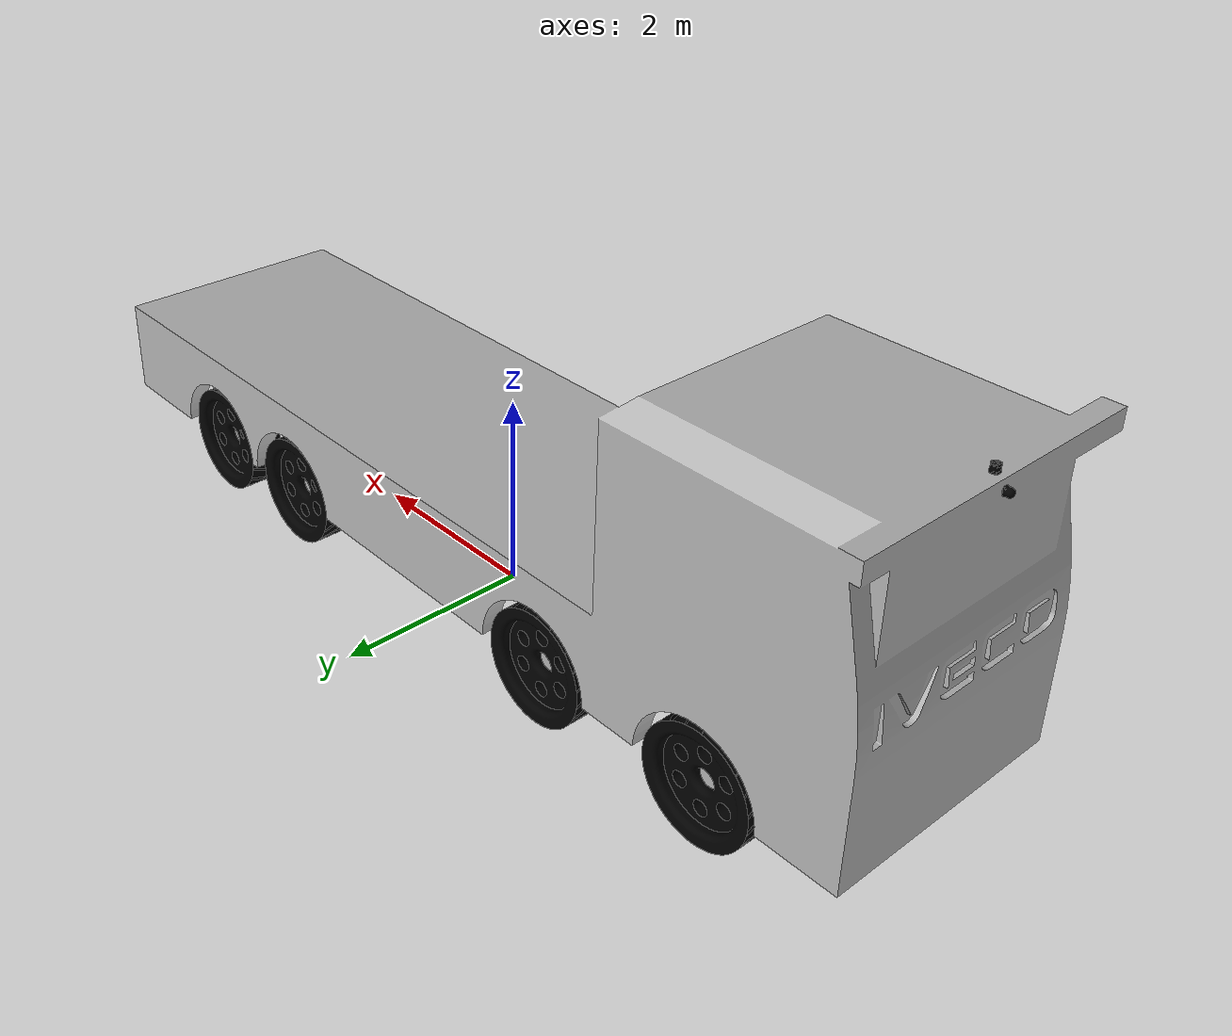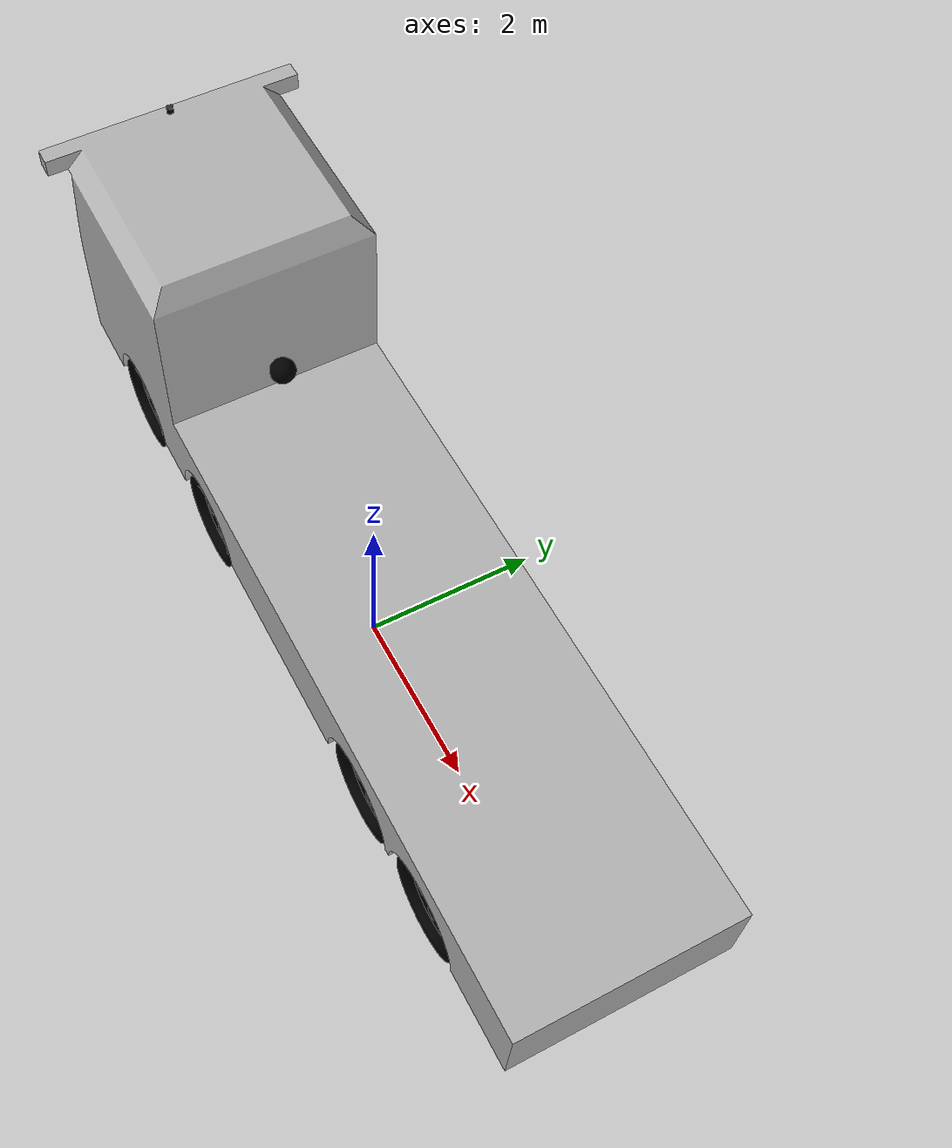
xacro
<?xml version="1.0" ?>
<robot name="truck" xmlns:xacro="http://www.ros.org/wiki/xacro">

<xacro:include filename="$(find truck_description)/urdf/materials.xacro" />

<link name="base_link">
  <inertial>
    <origin xyz="0.0 0.0 2.0832863727326365" rpy="0 0 0"/>
    <mass value="11829.5199"/>
    <inertia ixx="14576.4006" ixy="0.0" ixz="0.0" iyy="98410.5574" iyz="0.0" izz="98414.9426"/>
  </inertial>
  <visual>
    <origin xyz="0 0 0" rpy="0 0 0"/>
    <geometry>
      <mesh filename="file://$(find truck_description)/meshes/base_link.stl" scale="0.001 0.001 0.001"/>
    </geometry>
    <material name="silver"/>
  </visual>
  <collision>
    <geometry>
      <box size="10.2 2.6 3.6" />
    </geometry>
    <origin xyz="0 2.7721660388234675e-05 2.040816658051612" rpy="0 0 0" />
  </collision>
</link>

<xacro:macro name="suspension_unit" params="name xyz">
  <link name="${name}_suspension_mount">
    <inertial>
      <origin xyz="0 0 0" rpy="0 0 0"/>
      <mass value="0.01"/>
      <inertia ixx="1e-5" ixy="0" ixz="0" iyy="1e-5" iyz="0" izz="1e-5"/>
    </inertial>
  </link>

  <link name="${name}_suspension_slider">
    <inertial>
      <origin xyz="0 0 0" rpy="0 0 0"/>
      <mass value="0.01"/>
      <inertia ixx="1e-5" ixy="0" ixz="0" iyy="1e-5" iyz="0" izz="1e-5"/>
    </inertial>
  </link>

  <joint name="${name}_suspension_mount_joint" type="fixed">
    <parent link="base_link"/>
    <child link="${name}_suspension_mount"/>
    <origin xyz="${xyz}" rpy="0 0 0"/>
  </joint>

  <joint name="${name}_suspension_joint" type="prismatic">
    <parent link="${name}_suspension_mount"/>
    <child link="${name}_suspension_slider"/>
    <origin xyz="0 0 0" rpy="0 0 0"/>
    <axis xyz="0 0 1"/>
    <limit lower="-0.05" upper="0.05" effort="100000" velocity="1.0"/>
    <dynamics damping="8000.0" friction="0.0"/>
  </joint>

  <gazebo reference="${name}_suspension_joint">
    <implicitSpringDamper>true</implicitSpringDamper>
    <springStiffness>1000000.0</springStiffness>
    <springReference>0.0</springReference>
  </gazebo>
</xacro:macro>

<link name="left_wheel_axis4_1">
  <inertial>
    <origin xyz="3.472872993626197e-07 4.744911922260897e-07 4.782199592989755e-07" rpy="0 0 0"/>
    <mass value="121.3100"/>
    <inertia ixx="13.0741" ixy="0" ixz="0" iyy="24.2102" iyz="0" izz="13.0741"/>
  </inertial>
  <visual>
    <origin xyz="-3.333571 0.983719 -0.602025" rpy="0 0 0"/>
    <geometry>
      <mesh filename="file://$(find truck_description)/meshes/left_wheel_axis4_1.stl" scale="0.001 0.001 0.001"/>
    </geometry>
    <material name="black"/>
  </visual>
  <collision name="left_wheel_axis4_collision_1">
    <geometry>
      <sphere radius="0.5645" />
    </geometry>
    <origin xyz="0 0 0" rpy="0 0 0" />
  </collision>
</link>

<link name="left_wheel_axis3_1">
  <inertial>
    <origin xyz="3.472872989185305e-07 4.744911920040451e-07 4.782199596320424e-07" rpy="0 0 0"/>
    <mass value="121.3100"/>
    <inertia ixx="13.0741" ixy="0" ixz="0" iyy="24.2102" iyz="0" izz="13.0741"/>
  </inertial>
  <visual>
    <origin xyz="-1.951571 0.983719 -0.602025" rpy="0 0 0"/>
    <geometry>
      <mesh filename="file://$(find truck_description)/meshes/left_wheel_axis3_1.stl" scale="0.001 0.001 0.001"/>
    </geometry>
    <material name="black"/>
  </visual>
  <collision name="left_wheel_axis3_collision_1">
    <geometry>
      <sphere radius="0.5645" />
    </geometry>
    <origin xyz="0 0 0" rpy="0 0 0" />
  </collision>
</link>

<link name="right_wheel_axis4_1">
  <inertial>
    <origin xyz="3.472872993626197e-07 4.744911921150674e-07 4.78219957633641e-07" rpy="0 0 0"/>
    <mass value="121.3100"/>
    <inertia ixx="13.0741" ixy="0" ixz="0" iyy="24.2102" iyz="0" izz="13.0741"/>
  </inertial>
  <visual>
    <origin xyz="-3.333571 -1.104281 -0.602025" rpy="0 0 0"/>
    <geometry>
      <mesh filename="file://$(find truck_description)/meshes/right_wheel_axis4_1.stl" scale="0.001 0.001 0.001"/>
    </geometry>
    <material name="black"/>
  </visual>
  <collision name="right_wheel_axis4_collision_1">
    <geometry>
      <sphere radius="0.5645" />
    </geometry>
    <origin xyz="0 0 0" rpy="0 0 0" />
  </collision>
</link>

<link name="right_wheel_axis3_1">
  <inertial>
    <origin xyz="3.472873000287535e-07 4.744911921150674e-07 4.782199595210201e-07" rpy="0 0 0"/>
    <mass value="121.3100"/>
    <inertia ixx="13.0741" ixy="0" ixz="0" iyy="24.2102" iyz="0" izz="13.0741"/>
  </inertial>
  <visual>
    <origin xyz="-1.951571 -1.104281 -0.602025" rpy="0 0 0"/>
    <geometry>
      <mesh filename="file://$(find truck_description)/meshes/right_wheel_axis3_1.stl" scale="0.001 0.001 0.001"/>
    </geometry>
    <material name="black"/>
  </visual>
  <collision name="right_wheel_axis3_collision_1">
    <geometry>
      <sphere radius="0.5645" />
    </geometry>
    <origin xyz="0 0 0" rpy="0 0 0" />
  </collision>
</link>

<link name="left_wheel_axis2_1">
  <inertial>
    <origin xyz="3.472872989185305e-07 4.744911910048444e-07 4.782199599651094e-07" rpy="0 0 0"/>
    <mass value="121.3100"/>
    <inertia ixx="13.0741" ixy="0" ixz="0" iyy="24.2102" iyz="0" izz="13.0741"/>
  </inertial>
  <visual>
    <origin xyz="1.798429 1.005219 -0.602025" rpy="0 0 0"/>
    <geometry>
      <mesh filename="file://$(find truck_description)/meshes/left_wheel_axis2_1.stl" scale="0.001 0.001 0.001"/>
    </geometry>
    <material name="black"/>
  </visual>
  <collision name="left_wheel_axis2_collision_1">
    <geometry>
      <sphere radius="0.5645" />
    </geometry>
    <origin xyz="0 0 0" rpy="0 0 0" />
  </collision>
</link>

<link name="left_steer_axis2_link">
  <inertial>
    <origin xyz="0 0 0" rpy="0 0 0"/>
    <mass value="0.01"/>
    <inertia ixx="1e-5" ixy="0" ixz="0" iyy="1e-5" iyz="0" izz="1e-5"/>
  </inertial>
</link>

<link name="right_wheel_axis2_1">
  <inertial>
    <origin xyz="3.472873000287535e-07 4.744911910048444e-07 4.782199599651094e-07" rpy="0 0 0"/>
    <mass value="121.3100"/>
    <inertia ixx="13.0741" iyy="24.2102" izz="13.0741" ixy="0" iyz="0" ixz="0"/>
  </inertial>
  <visual>
    <origin xyz="1.798429 -1.125781 -0.602025" rpy="0 0 0"/>
    <geometry>
      <mesh filename="file://$(find truck_description)/meshes/right_wheel_axis2_1.stl" scale="0.001 0.001 0.001"/>
    </geometry>
    <material name="black"/>
  </visual>
  <collision name="right_wheel_axis2_collision_1">
    <geometry>
      <sphere radius="0.5645" />
    </geometry>
    <origin xyz="0 0 0" rpy="0 0 0" />
  </collision>
</link>

<link name="right_steer_axis2_link">
  <inertial>
    <origin xyz="0 0 0" rpy="0 0 0"/>
    <mass value="0.01"/>
    <inertia ixx="1e-5" ixy="0" ixz="0" iyy="1e-5" iyz="0" izz="1e-5"/>
  </inertial>
</link>

<link name="left_wheel_axis1_1">
  <inertial>
    <origin xyz="3.472872993626197e-07 4.744911910048444e-07 4.78219960187154e-07" rpy="0 0 0"/>
    <mass value="121.3100"/>
    <inertia ixx="13.0741" ixy="0" ixz="0" iyy="24.2102" iyz="0" izz="13.0741"/>
  </inertial>
  <visual>
    <origin xyz="3.698429 1.005219 -0.602025" rpy="0 0 0"/>
    <geometry>
      <mesh filename="file://$(find truck_description)/meshes/left_wheel_axis1_1.stl" scale="0.001 0.001 0.001"/>
    </geometry>
    <material name="black"/>
  </visual>
  <collision name="left_wheel_axis1_collision_1">
    <geometry>
      <sphere radius="0.5645" />
    </geometry>
    <origin xyz="0 0 0" rpy="0 0 0" />
  </collision>
</link>

<link name="left_steer_axis1_link">
  <inertial>
    <origin xyz="0 0 0" rpy="0 0 0"/>
    <mass value="0.01"/>
    <inertia ixx="1e-5" ixy="0" ixz="0" iyy="1e-5" iyz="0" izz="1e-5"/>
  </inertial>
</link>

<link name="right_wheel_axis1_1">
  <inertial>
    <origin xyz="3.472872993626197e-07 4.744911910048444e-07 4.78219960187154e-07" rpy="0 0 0"/>
    <mass value="121.3100"/>
    <inertia ixx="13.0741" ixy="0" ixz="0" iyy="24.2102" iyz="0" izz="13.0741"/>
  </inertial>
  <visual>
    <origin xyz="3.698429 -1.125781 -0.602025" rpy="0 0 0"/>
    <geometry>
      <mesh filename="file://$(find truck_description)/meshes/right_wheel_axis1_1.stl" scale="0.001 0.001 0.001"/>
    </geometry>
    <material name="black"/>
  </visual>
  <collision name="right_wheel_axis1_collision_1">
    <geometry>
      <sphere radius="0.5645" />
    </geometry>
    <origin xyz="0 0 0" rpy="0 0 0" />
  </collision>
</link>

<link name="right_steer_axis1_link">
  <inertial>
    <origin xyz="0 0 0" rpy="0 0 0"/>
    <mass value="0.01"/>
    <inertia ixx="1e-5" ixy="0" ixz="0" iyy="1e-5" iyz="0" izz="1e-5"/>
  </inertial>
</link>

<link name="ouster_link_1">
  <inertial>
    <origin xyz="1.868054972931077e-07 0.00045335605831459125 0.03028987258186744" rpy="0 0 0"/>
    <mass value="2.207020426893562"/>
    <inertia ixx="0.001578" iyy="0.001594" izz="0.001651" ixy="0.0" iyz="-1.2e-05" ixz="-0.0"/>
  </inertial>
  <visual>
    <origin xyz="5.034679 -0.060281 -3.602025" rpy="0 0 0"/>
    <geometry>
      <mesh filename="file://$(find truck_description)/meshes/ouster_link_1.stl" scale="0.001 0.001 0.001"/>
    </geometry>
    <material name="black"/>
  </visual>
  <collision>
    <origin xyz="5.034679 -0.060281 -3.602025" rpy="0 0 0"/>
    <geometry>
      <mesh filename="file://$(find truck_description)/meshes/ouster_link_1.stl" scale="0.001 0.001 0.001"/>
    </geometry>
  </collision>
</link>

<link name="osdome_link1_1">
  <inertial>
    <origin xyz="-0.031863759259128877 0.00046348026222201716 3.249757445367152e-07" rpy="0 0 0"/>
    <mass value="2.304753434462314"/>
    <inertia ixx="0.001576" iyy="0.001682" izz="0.001666" ixy="1.3e-05" iyz="0.0" ixz="0.0"/>
  </inertial>
  <visual>
    <origin xyz="5.130429 -0.060281 -3.502025" rpy="0 0 0"/>
    <geometry>
      <mesh filename="file://$(find truck_description)/meshes/osdome_link1_1.stl" scale="0.001 0.001 0.001"/>
    </geometry>
    <material name="black"/>
  </visual>
  <collision>
    <origin xyz="5.130429 -0.060281 -3.502025" rpy="0 0 0"/>
    <geometry>
      <mesh filename="file://$(find truck_description)/meshes/osdome_link1_1.stl" scale="0.001 0.001 0.001"/>
    </geometry>
  </collision>
</link>

<link name="osdome_link2_1">
  <inertial>
    <origin xyz="5.005315175665714e-07 0.0004625137215177322 -0.03186362832646772" rpy="0 0 0"/>
    <mass value="2.304753434462314"/>
    <inertia ixx="0.001666" iyy="0.001682" izz="0.001576" ixy="-0.0" iyz="1.3e-05" ixz="-0.0"/>
  </inertial>
  <visual>
    <origin xyz="5.030429 1.33101 -3.402025" rpy="0 0 0"/>
    <geometry>
      <mesh filename="file://$(find truck_description)/meshes/osdome_link2_1.stl" scale="0.001 0.001 0.001"/>
    </geometry>
    <material name="black"/>
  </visual>
  <collision>
    <origin xyz="5.030429 1.33101 -3.402025" rpy="0 0 0"/>
    <geometry>
      <mesh filename="file://$(find truck_description)/meshes/osdome_link2_1.stl" scale="0.001 0.001 0.001"/>
    </geometry>
  </collision>
</link>

<link name="osdome_link3_1">
  <inertial>
    <origin xyz="-3.998840369945356e-09 0.0004634825472478177 -0.03186362832646994" rpy="0 0 0"/>
    <mass value="2.304753434462314"/>
    <inertia ixx="0.001666" iyy="0.001682" izz="0.001576" ixy="-0.0" iyz="1.3e-05" ixz="-0.0"/>
  </inertial>
  <visual>
    <origin xyz="5.030008 -1.460281 -3.402025" rpy="0 0 0"/>
    <geometry>
      <mesh filename="file://$(find truck_description)/meshes/osdome_link3_1.stl" scale="0.001 0.001 0.001"/>
    </geometry>
    <material name="black"/>
  </visual>
  <collision>
    <origin xyz="5.030008 -1.460281 -3.402025" rpy="0 0 0"/>
    <geometry>
      <mesh filename="file://$(find truck_description)/meshes/osdome_link3_1.stl" scale="0.001 0.001 0.001"/>
    </geometry>
  </collision>
</link>

<xacro:suspension_unit name="left_a4" xyz="3.333571 -0.983719 0.602025"/>

<joint name="left_rot_joint_a4" type="continuous">
  <origin xyz="0 0 0" rpy="0 0 0"/>
  <parent link="left_a4_suspension_slider"/>
  <child link="left_wheel_axis4_1"/>
  <axis xyz="0.0 -1.0 0.0"/>
</joint>

<xacro:suspension_unit name="left_a3" xyz="1.951571 -0.983719 0.602025"/>

<joint name="left_rot_joint_a3" type="continuous">
  <origin xyz="0 0 0" rpy="0 0 0"/>
  <parent link="left_a3_suspension_slider"/>
  <child link="left_wheel_axis3_1"/>
  <axis xyz="0.0 -1.0 0.0"/>
</joint>

<xacro:suspension_unit name="right_a4" xyz="3.333571 1.104281 0.602025"/>

<joint name="right_rot_joint_a4" type="continuous">
  <origin xyz="0 0 0" rpy="0 0 0"/>
  <parent link="right_a4_suspension_slider"/>
  <child link="right_wheel_axis4_1"/>
  <axis xyz="-0.0 -1.0 -0.0"/>
</joint>

<xacro:suspension_unit name="right_a3" xyz="1.951571 1.104281 0.602025"/>

<joint name="right_rot_joint_a3" type="continuous">
  <origin xyz="0 0 0" rpy="0 0 0"/>
  <parent link="right_a3_suspension_slider"/>
  <child link="right_wheel_axis3_1"/>
  <axis xyz="-0.0 -1.0 -0.0"/>
</joint>

<joint name="left_rot_joint_a2" type="continuous">
  <origin xyz="-0.0 0.0 0.0" rpy="0 0 0"/>
  <parent link="left_steer_axis2_link"/>
  <child link="left_wheel_axis2_1"/>
  <axis xyz="0.0 -1.0 0.0"/>
</joint>

<xacro:suspension_unit name="left_a2" xyz="-1.798429 -1.005219 0.602025"/>

<joint name="left_steer_joint_a2" type="revolute">
  <origin xyz="0 0 0" rpy="0 0 0"/>
  <parent link="left_a2_suspension_slider"/>
  <child link="left_steer_axis2_link"/>
  <axis xyz="0.0 -0.0 1.0"/>
  <limit upper="0.523599" lower="-0.523599" effort="100" velocity="100"/>
  <dynamics damping="100.0" friction="10.0"/>
</joint>

<joint name="right_rot_joint_a2" type="continuous">
  <origin xyz="0.0 0.0 0.0" rpy="0 0 0"/>
  <parent link="right_steer_axis2_link"/>
  <child link="right_wheel_axis2_1"/>
  <axis xyz="-0.0 -1.0 -0.0"/>
</joint>

<xacro:suspension_unit name="right_a2" xyz="-1.798429 1.125781 0.602025"/>

<joint name="right_steer_joint_a2" type="revolute">
  <origin xyz="0 0 0" rpy="0 0 0"/>
  <parent link="right_a2_suspension_slider"/>
  <child link="right_steer_axis2_link"/>
  <axis xyz="-0.0 0.0 1.0"/>
  <limit upper="0.523599" lower="-0.523599" effort="100" velocity="100"/>
  <dynamics damping="100.0" friction="10.0"/>
</joint>

<joint name="left_rot_joint_a1" type="continuous">
  <origin xyz="0.0 0.0 0.0" rpy="0 0 0"/>
  <parent link="left_steer_axis1_link"/>
  <child link="left_wheel_axis1_1"/>
  <axis xyz="0.0 -1.0 0.0"/>
</joint>

<xacro:suspension_unit name="left_a1" xyz="-3.698429 -1.005219 0.602025"/>

<joint name="left_steer_joint_a1" type="revolute">
  <origin xyz="0 0 0" rpy="0 0 0"/>
  <parent link="left_a1_suspension_slider"/>
  <child link="left_steer_axis1_link"/>
  <axis xyz="0.0 -0.0 1.0"/>
  <limit upper="0.523599" lower="-0.523599" effort="100" velocity="100"/>
  <dynamics damping="100.0" friction="10.0"/>
</joint>

<joint name="right_rot_joint_a1" type="continuous">
  <origin xyz="-0.0 0.0 0.0" rpy="0 0 0"/>
  <parent link="right_steer_axis1_link"/>
  <child link="right_wheel_axis1_1"/>
  <axis xyz="-0.0 -1.0 -0.0"/>
</joint>

<xacro:suspension_unit name="right_a1" xyz="-3.698429 1.125781 0.602025"/>

<joint name="right_steer_joint_a1" type="revolute">
  <origin xyz="0 0 0" rpy="0 0 0"/>
  <parent link="right_a1_suspension_slider"/>
  <child link="right_steer_axis1_link"/>
  <axis xyz="-0.0 0.0 1.0"/>
  <limit upper="0.523599" lower="-0.523599" effort="100" velocity="100"/>
  <dynamics damping="100.0" friction="10.0"/>
</joint>

<joint name="ouster_joint" type="fixed">
  <origin xyz="-5.034679 0.060281 3.602025" rpy="0 0 0"/>
  <parent link="base_link"/>
  <child link="ouster_link_1"/>
</joint>

<joint name="osdome_joint1" type="fixed">
  <origin xyz="-5.130429 0.060281 3.502025" rpy="0 0 0"/>
  <parent link="base_link"/>
  <child link="osdome_link1_1"/>
</joint>

<joint name="Rigid 16" type="fixed">
  <origin xyz="-5.030429 -1.33101 3.402025" rpy="0 0 0"/>
  <parent link="base_link"/>
  <child link="osdome_link2_1"/>
</joint>

<joint name="Rigid 17" type="fixed">
  <origin xyz="-5.030008 1.460281 3.402025" rpy="0 0 0"/>
  <parent link="base_link"/>
  <child link="osdome_link3_1"/>
</joint>

<link name="imu_link">
  <visual>
    <origin xyz="0 0 0" rpy="0 0 0"/>
    <geometry>
      <sphere radius="0.15"/>
    </geometry>
    <material name="black"/>
  </visual>
  <collision>
    <origin xyz="0 0 0" rpy="0 0 0"/>
    <geometry>
      <sphere radius="0.15"/>
    </geometry>
  </collision>
  <inertial>
    <origin xyz="0 0 0" rpy="0 0 0"/>
    <mass value="0.001"/>
    <inertia
      ixx="0.000000009"
      ixy="0"
      ixz="0"
      iyy="0.000000009"
      iyz="0"
      izz="0.000000009"/>
  </inertial>
</link>

<joint name="imu_joint" type="fixed">
  <parent link="base_link"/>
  <child link="imu_link"/>
  <origin xyz="-2.317907 0.060311 2.084352" rpy="0 0 0"/>
</joint>

</robot>

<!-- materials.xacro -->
<robot name="truck" xmlns:xacro="http://www.ros.org/wiki/xacro" >

<material name="silver">
  <color rgba="0.700 0.700 0.700 1.000"/>
</material>

<material name="black">
  <color rgba="0.0 0.0 0.0 1.000"/>
</material>

</robot>
